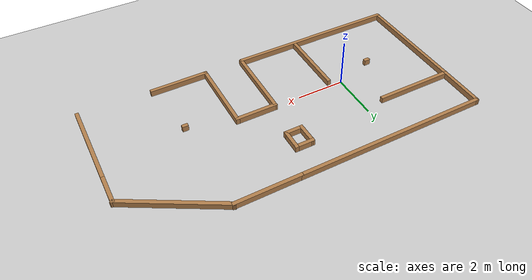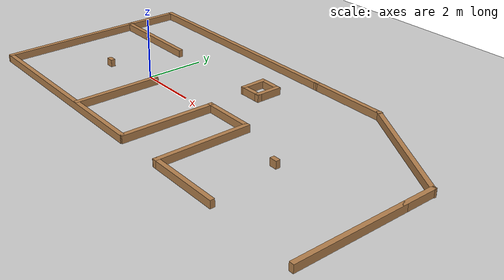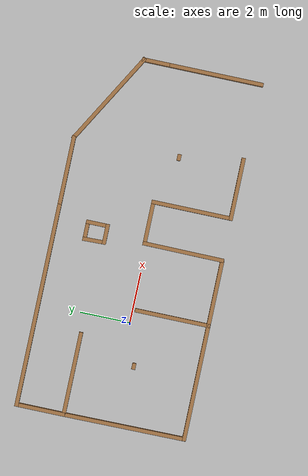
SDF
<sdf version="1.6">
 <world name="default">
  <light name="sun" type="directional">
   <pose>0 0 10 0 -0 0</pose>
   <diffuse>0.8 0.8 0.8 1</diffuse>
   <specular>0.2 0.2 0.2 1</specular>
   <attenuation>
    <range>1000</range>
    <constant>0.9</constant>
    <linear>0.01</linear>
    <quadratic>0.001</quadratic>
   </attenuation>
   <direction>-0.5 0.1 -0.9</direction>
  </light>
  <model name="ground_plane">
   <static>1</static>
   <link name="link">
    <collision name="collision">
     <geometry><plane><normal>0 0 1</normal><size>100 100</size></plane></geometry>
     <surface>
      <contact><collide_bitmask>65535</collide_bitmask></contact>
      <friction><ode><mu>100</mu><mu2>50</mu2></ode></friction>
     </surface>
    </collision>
    <visual name="visual">
     <cast_shadows>0</cast_shadows>
     <geometry><plane><normal>0 0 1</normal><size>100 100</size></plane></geometry>
     <material>
      <script><uri>file://media/materials/scripts/gazebo.material</uri><name>Gazebo/Grey</name></script>
     </material>
    </visual>
   </link>
  </model>
  <gravity>0 0 -9.8</gravity>
  <magnetic_field>6e-06 2.3e-05 -4.2e-05</magnetic_field>
  <atmosphere type="adiabatic"/>
  <physics name="default_physics" default="0" type="ode">
   <max_step_size>0.001</max_step_size>
   <real_time_factor>1</real_time_factor>
   <real_time_update_rate>1000</real_time_update_rate>
  </physics>
  <scene><ambient>0.4 0.4 0.4 1</ambient><background>0.7 0.7 0.7 1</background><shadows>1</shadows></scene>
  <audio><device>default</device></audio>
  <spherical_coordinates>
   <surface_model>EARTH_WGS84</surface_model>
   <latitude_deg>0</latitude_deg>
   <longitude_deg>0</longitude_deg>
   <elevation>0</elevation>
   <heading_deg>0</heading_deg>
  </spherical_coordinates>
  <model name="mapaclase">
   <pose>3.09555 0.314803 0 0 -0 0</pose>
   <link name="Wall_11">
    <collision name="Wall_11_Collision">
     <geometry><box><size>2 0.15 0.25</size></box></geometry>
     <pose>0 0 0.125 0 -0 0</pose>
    </collision>
    <visual name="Wall_11_Visual">
     <pose>0 0 0.125 0 -0 0</pose>
     <geometry><box><size>2 0.15 0.25</size></box></geometry>
     <material>
      <script><uri>file://media/materials/scripts/gazebo.material</uri><name>Gazebo/Wood</name></script>
      <ambient>1 1 1 1</ambient>
     </material>
     <meta><layer>0</layer></meta>
    </visual>
    <pose>-7.13855 2.4372 0 0 -0 1.5708</pose>
   </link>
   <link name="Wall_12">
    <collision name="Wall_12_Collision">
     <geometry><box><size>8.25 0.15 0.25</size></box></geometry>
     <pose>0 0 0.125 0 -0 0</pose>
    </collision>
    <visual name="Wall_12_Visual">
     <pose>0 0 0.125 0 -0 0</pose>
     <geometry><box><size>8.25 0.15 0.25</size></box></geometry>
     <material>
      <script><uri>file://media/materials/scripts/gazebo.material</uri><name>Gazebo/Wood</name></script>
      <ambient>1 1 1 1</ambient>
     </material>
     <meta><layer>0</layer></meta>
    </visual>
    <pose>-3.08855 3.3617 0 0 -0 -0.000123</pose>
   </link>
   <link name="Wall_14">
    <collision name="Wall_14_Collision">
     <geometry><box><size>2.75 0.15 0.25</size></box></geometry>
     <pose>0 0 0.125 0 -0 0</pose>
    </collision>
    <visual name="Wall_14_Visual">
     <pose>0 0 0.125 0 -0 0</pose>
     <geometry><box><size>2.75 0.15 0.25</size></box></geometry>
     <material>
      <script><uri>file://media/materials/scripts/gazebo.material</uri><name>Gazebo/Wood</name></script>
      <ambient>1 1 1 1</ambient>
     </material>
     <meta><layer>0</layer></meta>
    </visual>
    <pose>2.26145 3.3612 0 0 -0 0</pose>
   </link>
   <link name="Wall_15">
    <collision name="Wall_15_Collision">
     <geometry><box><size>4.25 0.15 0.25</size></box></geometry>
     <pose>0 0 0.125 0 -0 0</pose>
    </collision>
    <visual name="Wall_15_Visual">
     <pose>0 0 0.125 0 -0 0</pose>
     <geometry><box><size>4.25 0.15 0.25</size></box></geometry>
     <material>
      <script><uri>file://media/materials/scripts/gazebo.material</uri><name>Gazebo/Wood</name></script>
      <ambient>1 1 1 1</ambient>
     </material>
     <meta><layer>0</layer></meta>
    </visual>
    <pose>5.33645 2.3362 0 0 -0 -0.523685</pose>
   </link>
   <link name="Wall_16">
    <collision name="Wall_16_Collision">
     <geometry><box><size>1.25 0.15 0.25</size></box></geometry>
     <pose>0 0 0.125 0 -0 0</pose>
    </collision>
    <visual name="Wall_16_Visual">
     <pose>0 0 0.125 0 -0 0</pose>
     <geometry><box><size>1.25 0.15 0.25</size></box></geometry>
     <material>
      <script><uri>file://media/materials/scripts/gazebo.material</uri><name>Gazebo/Wood</name></script>
      <ambient>1 1 1 1</ambient>
     </material>
     <meta><layer>0</layer></meta>
    </visual>
    <pose>7.11145 0.761197 0 0 -0 -1.5708</pose>
   </link>
   <link name="Wall_18">
    <collision name="Wall_18_Collision">
     <geometry><box><size>3.75 0.15 0.25</size></box></geometry>
     <pose>0 0 0.125 0 -0 0</pose>
    </collision>
    <visual name="Wall_18_Visual">
     <pose>0 0 0.125 0 -0 0</pose>
     <geometry><box><size>3.75 0.15 0.25</size></box></geometry>
     <material>
      <script><uri>file://media/materials/scripts/gazebo.material</uri><name>Gazebo/Wood</name></script>
      <ambient>1 1 1 1</ambient>
     </material>
     <meta><layer>0</layer></meta>
    </visual>
    <pose>7.11145 -1.5888 0 0 -0 -1.5708</pose>
   </link>
   <link name="Wall_22">
    <collision name="Wall_22_Collision">
     <geometry><box><size>3.25 0.15 0.25</size></box></geometry>
     <pose>0 0 0.125 0 -0 0</pose>
    </collision>
    <visual name="Wall_22_Visual">
     <pose>0 0 0.125 0 -0 0</pose>
     <geometry><box><size>3.25 0.15 0.25</size></box></geometry>
     <material>
      <script><uri>file://media/materials/scripts/gazebo.material</uri><name>Gazebo/Wood</name></script>
      <ambient>1 1 1 1</ambient>
     </material>
     <meta><layer>0</layer></meta>
    </visual>
    <pose>-5.47144 1.48017 0 0 -0 0</pose>
   </link>
   <link name="Wall_25">
    <collision name="Wall_25_Collision">
     <geometry><box><size>0.25 0.15 0.25</size></box></geometry>
     <pose>0 0 0.125 0 -0 0</pose>
    </collision>
    <visual name="Wall_25_Visual">
     <pose>0 0 0.125 0 -0 0</pose>
     <geometry><box><size>0.25 0.15 0.25</size></box></geometry>
     <material>
      <script><uri>file://media/materials/scripts/gazebo.material</uri><name>Gazebo/Wood</name></script>
      <ambient>1 1 1 1</ambient>
     </material>
     <meta><layer>0</layer></meta>
    </visual>
    <pose>-4.71855 -0.812803 0 0 -0 0</pose>
   </link>
   <link name="Wall_41">
    <collision name="Wall_41_Collision">
     <geometry><box><size>3.25 0.15 0.25</size></box></geometry>
     <pose>0 0 0.125 0 -0 0</pose>
    </collision>
    <visual name="Wall_41_Visual">
     <pose>0 0 0.125 0 -0 0</pose>
     <geometry><box><size>3.25 0.15 0.25</size></box></geometry>
     <material>
      <script><uri>file://media/materials/scripts/gazebo.material</uri><name>Gazebo/Wood</name></script>
      <ambient>1 1 1 1</ambient>
     </material>
     <meta><layer>0</layer></meta>
    </visual>
    <pose>0.065641 -1.7678 0 0 -0 1.56447</pose>
   </link>
   <link name="Wall_43">
    <collision name="Wall_43_Collision">
     <geometry><box><size>7.25 0.15 0.25</size></box></geometry>
     <pose>0 0 0.125 0 -0 0</pose>
    </collision>
    <visual name="Wall_43_Visual">
     <pose>0 0 0.125 0 -0 0</pose>
     <geometry><box><size>7.25 0.15 0.25</size></box></geometry>
     <material>
      <script><uri>file://media/materials/scripts/gazebo.material</uri><name>Gazebo/Wood</name></script>
      <ambient>1 1 1 1</ambient>
     </material>
     <meta><layer>0</layer></meta>
    </visual>
    <pose>-3.54855 -3.3378 0 0 -0 0</pose>
   </link>
   <link name="Wall_46">
    <collision name="Wall_46_Collision">
     <geometry><box><size>1.80751 0.15 0.25</size></box></geometry>
     <pose>0 0 0.125 0 -0 0</pose>
    </collision>
    <visual name="Wall_46_Visual">
     <pose>0 0 0.125 0 -0 0</pose>
     <geometry><box><size>1.80751 0.15 0.25</size></box></geometry>
     <material>
      <script><uri>file://media/materials/scripts/gazebo.material</uri><name>Gazebo/Wood</name></script>
      <ambient>1 1 1 1</ambient>
     </material>
     <meta><layer>0</layer></meta>
    </visual>
    <pose>0.904449 -0.217803 0 0 -0 0</pose>
   </link>
   <link name="Wall_47">
    <collision name="Wall_47_Collision">
     <geometry><box><size>3.25 0.15 0.25</size></box></geometry>
     <pose>0 0 0.125 0 -0 0</pose>
    </collision>
    <visual name="Wall_47_Visual">
     <pose>0 0 0.125 0 -0 0</pose>
     <geometry><box><size>3.25 0.15 0.25</size></box></geometry>
     <material>
      <script><uri>file://media/materials/scripts/gazebo.material</uri><name>Gazebo/Wood</name></script>
      <ambient>1 1 1 1</ambient>
     </material>
     <meta><layer>0</layer></meta>
    </visual>
    <pose>1.73345 -1.7678 0 0 -0 -1.5708</pose>
   </link>
   <link name="Wall_49">
    <collision name="Wall_49_Collision">
     <geometry><box><size>2.5 0.15 0.25</size></box></geometry>
     <pose>0 0 0.125 0 -0 0</pose>
    </collision>
    <visual name="Wall_49_Visual">
     <pose>0 0 0.125 0 -0 0</pose>
     <geometry><box><size>2.5 0.15 0.25</size></box></geometry>
     <material>
      <script><uri>file://media/materials/scripts/gazebo.material</uri><name>Gazebo/Wood</name></script>
      <ambient>1 1 1 1</ambient>
     </material>
     <meta><layer>0</layer></meta>
    </visual>
    <pose>2.90845 -3.3178 0 0 -0 0</pose>
   </link>
   <link name="Wall_51">
    <collision name="Wall_51_Collision">
     <geometry><box><size>0.25 0.15 0.25</size></box></geometry>
     <pose>0 0 0.125 0 -0 0</pose>
    </collision>
    <visual name="Wall_51_Visual">
     <pose>0 0 0.125 0 -0 0</pose>
     <geometry><box><size>0.25 0.15 0.25</size></box></geometry>
     <material>
      <script><uri>file://media/materials/scripts/gazebo.material</uri><name>Gazebo/Wood</name></script>
      <ambient>1 1 1 1</ambient>
     </material>
     <meta><layer>0</layer></meta>
    </visual>
    <pose>3.64845 -0.832803 0 0 -0 0</pose>
   </link>
   <link name="Wall_53">
    <collision name="Wall_53_Collision">
     <geometry><box><size>3 0.15 0.25</size></box></geometry>
     <pose>0 0 0.125 0 -0 0</pose>
    </collision>
    <visual name="Wall_53_Visual">
     <pose>0 0 0.125 0 -0 0</pose>
     <geometry><box><size>3 0.15 0.25</size></box></geometry>
     <material>
      <script><uri>file://media/materials/scripts/gazebo.material</uri><name>Gazebo/Wood</name></script>
      <ambient>1 1 1 1</ambient>
     </material>
     <meta><layer>0</layer></meta>
    </visual>
    <pose>-2.55655 -1.8958 0 0 -0 -1.5708</pose>
   </link>
   <link name="Wall_55">
    <collision name="Wall_55_Collision">
     <geometry><box><size>0.831 0.15 0.25</size></box></geometry>
     <pose>0 0 0.125 0 -0 0</pose>
    </collision>
    <visual name="Wall_55_Visual">
     <pose>0 0 0.125 0 -0 0</pose>
     <geometry><box><size>0.831 0.15 0.25</size></box></geometry>
     <material>
      <script><uri>file://media/materials/scripts/gazebo.material</uri><name>Gazebo/Wood</name></script>
      <ambient>1 1 1 1</ambient>
     </material>
     <meta><layer>0</layer></meta>
    </visual>
    <pose>0.096949 2.1242 0 0 -0 0</pose>
   </link>
   <link name="Wall_57">
    <collision name="Wall_57_Collision">
     <geometry><box><size>0.931022 0.15 0.25</size></box></geometry>
     <pose>0 0 0.125 0 -0 0</pose>
    </collision>
    <visual name="Wall_57_Visual">
     <pose>0 0 0.125 0 -0 0</pose>
     <geometry><box><size>0.931022 0.15 0.25</size></box></geometry>
     <material>
      <script><uri>file://media/materials/scripts/gazebo.material</uri><name>Gazebo/Wood</name></script>
      <ambient>1 1 1 1</ambient>
     </material>
     <meta><layer>0</layer></meta>
    </visual>
    <pose>-0.233052 1.7337 0 0 -0 -1.54391</pose>
   </link>
   <link name="Wall_60">
    <collision name="Wall_60_Collision">
     <geometry><box><size>0.931022 0.15 0.25</size></box></geometry>
     <pose>0 0 0.125 0 -0 0</pose>
    </collision>
    <visual name="Wall_60_Visual">
     <pose>0 0 0.125 0 -0 0</pose>
     <geometry><box><size>0.931022 0.15 0.25</size></box></geometry>
     <material>
      <script><uri>file://media/materials/scripts/gazebo.material</uri><name>Gazebo/Wood</name></script>
      <ambient>1 1 1 1</ambient>
     </material>
     <meta><layer>0</layer></meta>
    </visual>
    <pose>0.437449 1.7337 0 0 -0 -1.5708</pose>
   </link>
   <link name="Wall_61">
    <collision name="Wall_61_Collision">
     <geometry><box><size>0.810437 0.15 0.25</size></box></geometry>
     <pose>0 0 0.125 0 -0 0</pose>
    </collision>
    <visual name="Wall_61_Visual">
     <pose>0 0 0.125 0 -0 0</pose>
     <geometry><box><size>0.810437 0.15 0.25</size></box></geometry>
     <material>
      <script><uri>file://media/materials/scripts/gazebo.material</uri><name>Gazebo/Wood</name></script>
      <ambient>1 1 1 1</ambient>
     </material>
     <meta><layer>0</layer></meta>
    </visual>
    <pose>0.107449 1.3432 0 0 -0 3.14159</pose>
   </link>
   <link name="Wall_9">
    <collision name="Wall_9_Collision">
     <geometry><box><size>5 0.15 0.25</size></box></geometry>
     <pose>0 0 0.125 0 -0 0</pose>
    </collision>
    <visual name="Wall_9_Visual">
     <pose>0 0 0.125 0 -0 0</pose>
     <geometry><box><size>5 0.15 0.25</size></box></geometry>
     <material>
      <script><uri>file://media/materials/scripts/gazebo.material</uri><name>Gazebo/Wood</name></script>
      <ambient>1 1 1 1</ambient>
     </material>
     <meta><layer>0</layer></meta>
    </visual>
    <pose>-7.11855 -0.912803 0 0 -0 1.57904</pose>
   </link>
   <static>1</static>
  </model>
 </world>
</sdf>
